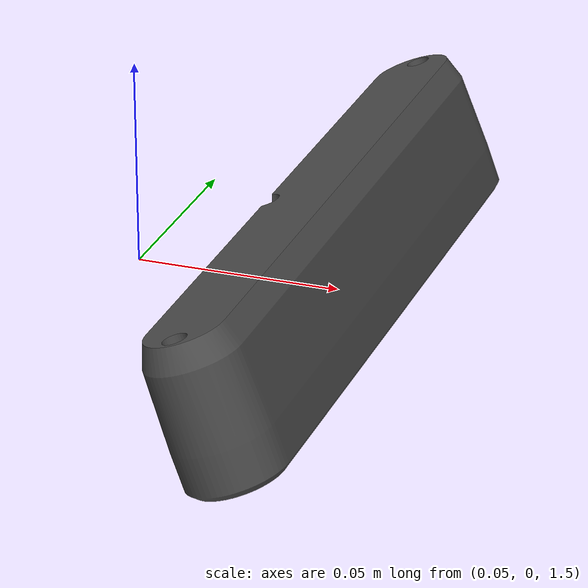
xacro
<?xml version="1.0" ?>
<!-- |    This document was autogenerated by xacro from /home/ros/test_ws/src/universal_robot/ur_description/urdf/ur5.xacro | -->
<!-- |    EDITING THIS FILE BY HAND IS NOT RECOMMENDED                                 | -->
<robot name="ur5_robot" xmlns:xacro="http://ros.org/wiki/xacro">

    <xacro:include filename="$(find industrial_environment)/urdf/sensors/kinetic_rgbd.urdf.xacro"/>

    <!-- Constants -->
    <xacro:property name="deg_to_rad" value="0.01745329251994329577"/>
    <xacro:property name="M_SCALE" value="0.001 0.001 0.001"/>
    <xacro:property name="M_PI" value="3.14159"/>

    <link name="world"/>

     <!-- Define RGB-D sensor -->
    <xacro:kinetic_rgb name="rgbd_camera" parent="world">
        <origin xyz="0.1 0.0 1.5" rpy="${0.0 * deg_to_rad} ${70.0 * deg_to_rad} ${0.0 * deg_to_rad}"/>
        <origin xyz="0 0 0" rpy="${-90 * deg_to_rad} ${0 * deg_to_rad} ${-90 * deg_to_rad}" />
    </xacro:kinetic_rgb>

</robot>

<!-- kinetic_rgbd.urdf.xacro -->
<robot xmlns:xacro="http://ros.org/wiki/xacro">

  <xacro:include filename="$(find industrial_environment)/urdf/sensors/kinetic_rgbd.gazebo.xacro"/>

  <xacro:macro name="dummy_inertial">
        <inertial>
        <origin xyz="0 0 0" rpy="0 0 0"/>
        <mass value="0.001"/>
        <inertia ixx="0.00001" ixy="0" ixz="0"
                iyy="0.00001" iyz="0"
                izz="0.00001"/>
        </inertial>
  </xacro:macro>

  <xacro:macro name="kinetic_rgb" params="name parent *origin *optical_origin">

        <link name="${name}_link">
            <inertial>
                <origin xyz="-0.00936000000 -0.00003000000 -0.00273000000" rpy="0 0 0"/>
                <mass value="0.21970000000"/>
                <inertia ixx="0.00000429247" ixy="0.00000000000" ixz="0.00000002565"
                        iyy="0.00000008027" iyz="0.00000000000"
                        izz="0.00000427339"/>
            </inertial>
            <visual>
                <geometry>
                    <mesh filename="package://industrial_environment/meshes/sensors/camera/kinetic.stl"/>
                </geometry>
                <material name="DarkGrey"/>
            </visual>

            <collision>
                <geometry>
                    <mesh filename="package://industrial_environment/meshes/sensors/camera/kinetic.dae"/>
                </geometry>
            </collision>
        </link>

        <!-- frames in the center of the camera -->
        <joint name="${name}_joint" type="fixed">
            <xacro:insert_block name="origin"/>
            <parent link="${parent}"/>
            <child link="${name}_link"/>
        </joint>

        <link name="${name}_optical_frame">
           <dummy_inertial/>
        </link>

        <joint name="${name}_optical_joint" type="fixed">
            <xacro:insert_block name="optical_origin"/>
            <parent link="${name}_link"/>
            <child link="${name}_optical_frame"/>
        </joint>

        <link name="${name}_depth_frame">
            <dummy_inertial/>
        </link>

        <!-- Depth sensor frames -->
        <joint name="${name}_depth_joint" type="fixed">
            <origin xyz="0.0 0.049 0.0" rpy="0 0 0"/>
            <parent link="${name}_link"/>
            <child link="${name}_depth_frame"/>
        </joint>

        <link name="${name}_depth_optical_frame">
            <dummy_inertial/>
        </link>

        <joint name="${name}_depth_optical_joint" type="fixed">
            <origin xyz="0 0 0" rpy="${-90.0 * deg_to_rad} 0.0 ${-90.0 * deg_to_rad}"/>
            <parent link="${name}_depth_frame"/>
            <child link="${name}_depth_optical_frame"/>
        </joint>

        <link name="${name}_rgb_frame">
            <dummy_inertial/>
        </link>

        <!-- RGB sensor frames -->
        <joint name="${name}_rgb_joint" type="fixed">
            <origin xyz="0.0 0.022 0.0" rpy="0 0 0"/>
            <parent link="${name}_link"/>
            <child link="${name}_rgb_frame"/>
        </joint>

        <link name="${name}_rgb_optical_frame">
            <dummy_inertial/>
        </link>

        <joint name="${name}_rgb_optical_joint" type="fixed">
            <origin xyz="0 0 0" rpy="${-90.0 * deg_to_rad} 0.0 ${-90.0 * deg_to_rad}"/>
            <parent link="${name}_rgb_frame"/>
            <child link="${name}_rgb_optical_frame"/>
        </joint>

        <xacro:kinetic_rgbd_camera_gazebo name="${name}"/>
  </xacro:macro>

</robot>
